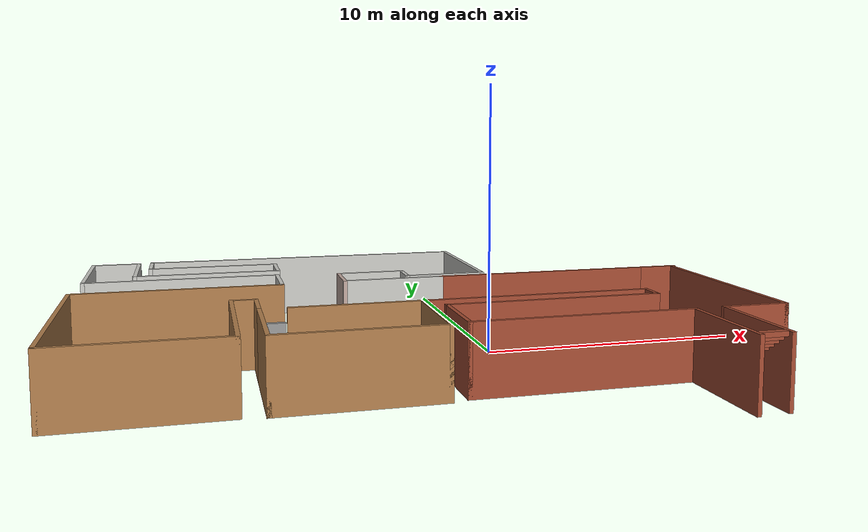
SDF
<?xml version='1.0'?>
<sdf version='1.6'>
  <model name='My_World_1'>
    <pose frame=''>-3.01264 -0.098382 0 0 -0 0</pose>
    <link name='Door_0'>
      <collision name='Door_0_Collision'>
        <geometry>
          <box>
            <size>0.9 0.17 2</size>
          </box>
        </geometry>
        <pose frame=''>0 0 1 0 -0 0</pose>
      </collision>
      <visual name='Door_0_Visual'>
        <pose frame=''>0 0 1 0 -0 0</pose>
        <geometry>
          <box>
            <size>0.9 0.17 2</size>
          </box>
        </geometry>
        <material>
          <script>
            <uri>file://media/materials/scripts/gazebo.material</uri>
            <name>Gazebo/Grey</name>
          </script>
        </material>
      </visual>
      <pose frame=''>-5.16313 -1.68606 0 0 -0 0</pose>
    </link>
    <link name='Stairs_0'>
      <visual name='Stairs_0_Visual_0'>
        <pose frame=''>9.04406 -5.22398 0.083333 0 -0 0</pose>
        <geometry>
          <box>
            <size>1 0.233333 0.166667</size>
          </box>
        </geometry>
        <material>
          <script>
            <uri>file://media/materials/scripts/gazebo.material</uri>
            <name>Gazebo/Bricks</name>
          </script>
          <ambient>1 1 1 1</ambient>
        </material>
        <meta>
          <layer>0</layer>
        </meta>
      </visual>
      <collision name='Stairs_0_Collision_0'>
        <geometry>
          <box>
            <size>1 0.233333 0.166667</size>
          </box>
        </geometry>
        <pose frame=''>9.04406 -5.22398 0.083333 0 -0 0</pose>
      </collision>
      <visual name='Stairs_0_Visual_1'>
        <pose frame=''>9.04406 -5.45732 0.25 0 -0 0</pose>
        <geometry>
          <box>
            <size>1 0.233333 0.166667</size>
          </box>
        </geometry>
        <material>
          <script>
            <uri>file://media/materials/scripts/gazebo.material</uri>
            <name>Gazebo/Bricks</name>
          </script>
          <ambient>1 1 1 1</ambient>
        </material>
        <meta>
          <layer>0</layer>
        </meta>
      </visual>
      <collision name='Stairs_0_Collision_1'>
        <geometry>
          <box>
            <size>1 0.233333 0.166667</size>
          </box>
        </geometry>
        <pose frame=''>9.04406 -5.45732 0.25 0 -0 0</pose>
      </collision>
      <visual name='Stairs_0_Visual_2'>
        <pose frame=''>9.04406 -5.69065 0.416667 0 -0 0</pose>
        <geometry>
          <box>
            <size>1 0.233333 0.166667</size>
          </box>
        </geometry>
        <material>
          <script>
            <uri>file://media/materials/scripts/gazebo.material</uri>
            <name>Gazebo/Bricks</name>
          </script>
          <ambient>1 1 1 1</ambient>
        </material>
        <meta>
          <layer>0</layer>
        </meta>
      </visual>
      <collision name='Stairs_0_Collision_2'>
        <geometry>
          <box>
            <size>1 0.233333 0.166667</size>
          </box>
        </geometry>
        <pose frame=''>9.04406 -5.69065 0.416667 0 -0 0</pose>
      </collision>
      <visual name='Stairs_0_Visual_3'>
        <pose frame=''>9.04406 -5.92398 0.583333 0 -0 0</pose>
        <geometry>
          <box>
            <size>1 0.233333 0.166667</size>
          </box>
        </geometry>
        <material>
          <script>
            <uri>file://media/materials/scripts/gazebo.material</uri>
            <name>Gazebo/Bricks</name>
          </script>
          <ambient>1 1 1 1</ambient>
        </material>
        <meta>
          <layer>0</layer>
        </meta>
      </visual>
      <collision name='Stairs_0_Collision_3'>
        <geometry>
          <box>
            <size>1 0.233333 0.166667</size>
          </box>
        </geometry>
        <pose frame=''>9.04406 -5.92398 0.583333 0 -0 0</pose>
      </collision>
      <visual name='Stairs_0_Visual_4'>
        <pose frame=''>9.04406 -6.15731 0.75 0 -0 0</pose>
        <geometry>
          <box>
            <size>1 0.233333 0.166667</size>
          </box>
        </geometry>
        <material>
          <script>
            <uri>file://media/materials/scripts/gazebo.material</uri>
            <name>Gazebo/Bricks</name>
          </script>
          <ambient>1 1 1 1</ambient>
        </material>
        <meta>
          <layer>0</layer>
        </meta>
      </visual>
      <collision name='Stairs_0_Collision_4'>
        <geometry>
          <box>
            <size>1 0.233333 0.166667</size>
          </box>
        </geometry>
        <pose frame=''>9.04406 -6.15731 0.75 0 -0 0</pose>
      </collision>
      <visual name='Stairs_0_Visual_5'>
        <pose frame=''>9.04406 -6.39065 0.916667 0 -0 0</pose>
        <geometry>
          <box>
            <size>1 0.233333 0.166667</size>
          </box>
        </geometry>
        <material>
          <script>
            <uri>file://media/materials/scripts/gazebo.material</uri>
            <name>Gazebo/Bricks</name>
          </script>
          <ambient>1 1 1 1</ambient>
        </material>
        <meta>
          <layer>0</layer>
        </meta>
      </visual>
      <collision name='Stairs_0_Collision_5'>
        <geometry>
          <box>
            <size>1 0.233333 0.166667</size>
          </box>
        </geometry>
        <pose frame=''>9.04406 -6.39065 0.916667 0 -0 0</pose>
      </collision>
      <visual name='Stairs_0_Visual_6'>
        <pose frame=''>9.04406 -6.62398 1.08333 0 -0 0</pose>
        <geometry>
          <box>
            <size>1 0.233333 0.166667</size>
          </box>
        </geometry>
        <material>
          <script>
            <uri>file://media/materials/scripts/gazebo.material</uri>
            <name>Gazebo/Bricks</name>
          </script>
          <ambient>1 1 1 1</ambient>
        </material>
        <meta>
          <layer>0</layer>
        </meta>
      </visual>
      <collision name='Stairs_0_Collision_6'>
        <geometry>
          <box>
            <size>1 0.233333 0.166667</size>
          </box>
        </geometry>
        <pose frame=''>9.04406 -6.62398 1.08333 0 -0 0</pose>
      </collision>
      <visual name='Stairs_0_Visual_7'>
        <pose frame=''>9.04406 -6.85731 1.25 0 -0 0</pose>
        <geometry>
          <box>
            <size>1 0.233333 0.166667</size>
          </box>
        </geometry>
        <material>
          <script>
            <uri>file://media/materials/scripts/gazebo.material</uri>
            <name>Gazebo/Bricks</name>
          </script>
          <ambient>1 1 1 1</ambient>
        </material>
        <meta>
          <layer>0</layer>
        </meta>
      </visual>
      <collision name='Stairs_0_Collision_7'>
        <geometry>
          <box>
            <size>1 0.233333 0.166667</size>
          </box>
        </geometry>
        <pose frame=''>9.04406 -6.85731 1.25 0 -0 0</pose>
      </collision>
      <visual name='Stairs_0_Visual_8'>
        <pose frame=''>9.04406 -7.09065 1.41667 0 -0 0</pose>
        <geometry>
          <box>
            <size>1 0.233333 0.166667</size>
          </box>
        </geometry>
        <material>
          <script>
            <uri>file://media/materials/scripts/gazebo.material</uri>
            <name>Gazebo/Bricks</name>
          </script>
          <ambient>1 1 1 1</ambient>
        </material>
        <meta>
          <layer>0</layer>
        </meta>
      </visual>
      <collision name='Stairs_0_Collision_8'>
        <geometry>
          <box>
            <size>1 0.233333 0.166667</size>
          </box>
        </geometry>
        <pose frame=''>9.04406 -7.09065 1.41667 0 -0 0</pose>
      </collision>
      <visual name='Stairs_0_Visual_9'>
        <pose frame=''>9.04406 -7.32398 1.58333 0 -0 0</pose>
        <geometry>
          <box>
            <size>1 0.233333 0.166667</size>
          </box>
        </geometry>
        <material>
          <script>
            <uri>file://media/materials/scripts/gazebo.material</uri>
            <name>Gazebo/Bricks</name>
          </script>
          <ambient>1 1 1 1</ambient>
        </material>
        <meta>
          <layer>0</layer>
        </meta>
      </visual>
      <collision name='Stairs_0_Collision_9'>
        <geometry>
          <box>
            <size>1 0.233333 0.166667</size>
          </box>
        </geometry>
        <pose frame=''>9.04406 -7.32398 1.58333 0 -0 0</pose>
      </collision>
      <visual name='Stairs_0_Visual_10'>
        <pose frame=''>9.04406 -7.55732 1.75 0 -0 0</pose>
        <geometry>
          <box>
            <size>1 0.233333 0.166667</size>
          </box>
        </geometry>
        <material>
          <script>
            <uri>file://media/materials/scripts/gazebo.material</uri>
            <name>Gazebo/Bricks</name>
          </script>
          <ambient>1 1 1 1</ambient>
        </material>
        <meta>
          <layer>0</layer>
        </meta>
      </visual>
      <collision name='Stairs_0_Collision_10'>
        <geometry>
          <box>
            <size>1 0.233333 0.166667</size>
          </box>
        </geometry>
        <pose frame=''>9.04406 -7.55732 1.75 0 -0 0</pose>
      </collision>
      <visual name='Stairs_0_Visual_11'>
        <pose frame=''>9.04406 -7.79065 1.91667 0 -0 0</pose>
        <geometry>
          <box>
            <size>1 0.233333 0.166667</size>
          </box>
        </geometry>
        <material>
          <script>
            <uri>file://media/materials/scripts/gazebo.material</uri>
            <name>Gazebo/Bricks</name>
          </script>
          <ambient>1 1 1 1</ambient>
        </material>
        <meta>
          <layer>0</layer>
        </meta>
      </visual>
      <collision name='Stairs_0_Collision_11'>
        <geometry>
          <box>
            <size>1 0.233333 0.166667</size>
          </box>
        </geometry>
        <pose frame=''>9.04406 -7.79065 1.91667 0 -0 0</pose>
      </collision>
      <visual name='Stairs_0_Visual_12'>
        <pose frame=''>9.04406 -8.02398 2.08333 0 -0 0</pose>
        <geometry>
          <box>
            <size>1 0.233333 0.166667</size>
          </box>
        </geometry>
        <material>
          <script>
            <uri>file://media/materials/scripts/gazebo.material</uri>
            <name>Gazebo/Bricks</name>
          </script>
          <ambient>1 1 1 1</ambient>
        </material>
        <meta>
          <layer>0</layer>
        </meta>
      </visual>
      <collision name='Stairs_0_Collision_12'>
        <geometry>
          <box>
            <size>1 0.233333 0.166667</size>
          </box>
        </geometry>
        <pose frame=''>9.04406 -8.02398 2.08333 0 -0 0</pose>
      </collision>
      <visual name='Stairs_0_Visual_13'>
        <pose frame=''>9.04406 -8.25732 2.25 0 -0 0</pose>
        <geometry>
          <box>
            <size>1 0.233333 0.166667</size>
          </box>
        </geometry>
        <material>
          <script>
            <uri>file://media/materials/scripts/gazebo.material</uri>
            <name>Gazebo/Bricks</name>
          </script>
          <ambient>1 1 1 1</ambient>
        </material>
        <meta>
          <layer>0</layer>
        </meta>
      </visual>
      <collision name='Stairs_0_Collision_13'>
        <geometry>
          <box>
            <size>1 0.233333 0.166667</size>
          </box>
        </geometry>
        <pose frame=''>9.04406 -8.25732 2.25 0 -0 0</pose>
      </collision>
      <visual name='Stairs_0_Visual_14'>
        <pose frame=''>9.04406 -8.49065 2.41667 0 -0 0</pose>
        <geometry>
          <box>
            <size>1 0.233333 0.166667</size>
          </box>
        </geometry>
        <material>
          <script>
            <uri>file://media/materials/scripts/gazebo.material</uri>
            <name>Gazebo/Bricks</name>
          </script>
          <ambient>1 1 1 1</ambient>
        </material>
        <meta>
          <layer>0</layer>
        </meta>
      </visual>
      <collision name='Stairs_0_Collision_14'>
        <geometry>
          <box>
            <size>1 0.233333 0.166667</size>
          </box>
        </geometry>
        <pose frame=''>9.04406 -8.49065 2.41667 0 -0 0</pose>
      </collision>
    </link>
    <link name='Wall_0'>
      <collision name='Wall_0_Collision'>
        <geometry>
          <box>
            <size>8.75 0.15 2.5</size>
          </box>
        </geometry>
        <pose frame=''>0 0 1.25 0 -0 0</pose>
      </collision>
      <visual name='Wall_0_Visual'>
        <pose frame=''>0 0 1.25 0 -0 0</pose>
        <geometry>
          <box>
            <size>8.75 0.15 2.5</size>
          </box>
        </geometry>
        <material>
          <script>
            <uri>file://media/materials/scripts/gazebo.material</uri>
            <name>Gazebo/Bricks</name>
          </script>
          <ambient>1 1 1 1</ambient>
        </material>
        <meta>
          <layer>0</layer>
        </meta>
      </visual>
      <pose frame=''>6.1383 2.63004 0 0 -0 3.14159</pose>
    </link>
    <link name='Wall_10'>
      <collision name='Wall_10_Collision'>
        <geometry>
          <box>
            <size>5.75 0.15 2.5</size>
          </box>
        </geometry>
        <pose frame=''>0 0 1.25 0 -0 0</pose>
      </collision>
      <visual name='Wall_10_Visual'>
        <pose frame=''>0 0 1.25 0 -0 0</pose>
        <geometry>
          <box>
            <size>5.75 0.15 2.5</size>
          </box>
        </geometry>
        <material>
          <script>
            <uri>file://media/materials/scripts/gazebo.material</uri>
            <name>Gazebo/CeilingTiled</name>
          </script>
          <ambient>0.996078 0.47451 0.0196078 1</ambient>
        </material>
        <meta>
          <layer>0</layer>
        </meta>
      </visual>
      <pose frame=''>3.6883 5.93004 0 0 -0 1.5708</pose>
    </link>
    <link name='Wall_11'>
      <collision name='Wall_11_Collision'>
        <geometry>
          <box>
            <size>13.25 0.15 2.5</size>
          </box>
        </geometry>
        <pose frame=''>0 0 1.25 0 -0 0</pose>
      </collision>
      <visual name='Wall_11_Visual'>
        <pose frame=''>0 0 1.25 0 -0 0</pose>
        <geometry>
          <box>
            <size>13.25 0.15 2.5</size>
          </box>
        </geometry>
        <material>
          <script>
            <uri>file://media/materials/scripts/gazebo.material</uri>
            <name>Gazebo/CeilingTiled</name>
          </script>
          <ambient>0.996078 0.47451 0.0196078 1</ambient>
        </material>
        <meta>
          <layer>0</layer>
        </meta>
      </visual>
      <pose frame=''>-2.8617 8.73004 0 0 -0 3.14159</pose>
    </link>
    <link name='Wall_12'>
      <collision name='Wall_12_Collision'>
        <geometry>
          <box>
            <size>1.71502 0.15 2.5</size>
          </box>
        </geometry>
        <pose frame=''>0 0 1.25 0 -0 0</pose>
      </collision>
      <visual name='Wall_12_Visual'>
        <pose frame=''>0 0 1.25 0 -0 0</pose>
        <geometry>
          <box>
            <size>1.71502 0.15 2.5</size>
          </box>
        </geometry>
        <material>
          <script>
            <uri>file://media/materials/scripts/gazebo.material</uri>
            <name>Gazebo/CeilingTiled</name>
          </script>
          <ambient>0.996078 0.47451 0.0196078 1</ambient>
        </material>
        <meta>
          <layer>0</layer>
        </meta>
      </visual>
      <pose frame=''>-9.4117 7.94753 0 0 -0 -1.5708</pose>
    </link>
    <link name='Wall_13'>
      <collision name='Wall_13_Collision'>
        <geometry>
          <box>
            <size>5.25 0.15 2.5</size>
          </box>
        </geometry>
        <pose frame=''>0 0 1.25 0 -0 0</pose>
      </collision>
      <visual name='Wall_13_Visual'>
        <pose frame=''>0 0 1.25 0 -0 0</pose>
        <geometry>
          <box>
            <size>5.25 0.15 2.5</size>
          </box>
        </geometry>
        <material>
          <script>
            <uri>file://media/materials/scripts/gazebo.material</uri>
            <name>Gazebo/CeilingTiled</name>
          </script>
          <ambient>0.996078 0.47451 0.0196078 1</ambient>
        </material>
        <meta>
          <layer>0</layer>
        </meta>
      </visual>
      <pose frame=''>-6.84421 7.16502 0 0 -0 0</pose>
    </link>
    <link name='Wall_14'>
      <collision name='Wall_14_Collision'>
        <geometry>
          <box>
            <size>1.78498 0.15 2.5</size>
          </box>
        </geometry>
        <pose frame=''>0 0 1.25 0 -0 0</pose>
      </collision>
      <visual name='Wall_14_Visual'>
        <pose frame=''>0 0 1.25 0 -0 0</pose>
        <geometry>
          <box>
            <size>1.78498 0.15 2.5</size>
          </box>
        </geometry>
        <material>
          <script>
            <uri>file://media/materials/scripts/gazebo.material</uri>
            <name>Gazebo/CeilingTiled</name>
          </script>
          <ambient>0.996078 0.47451 0.0196078 1</ambient>
        </material>
        <meta>
          <layer>0</layer>
        </meta>
      </visual>
      <pose frame=''>-4.3117 6.34753 0 0 -0 -1.5708</pose>
    </link>
    <link name='Wall_15'>
      <collision name='Wall_15_Collision'>
        <geometry>
          <box>
            <size>5.8032 0.15 2.5</size>
          </box>
        </geometry>
        <pose frame=''>0 0 1.25 0 -0 0</pose>
      </collision>
      <visual name='Wall_15_Visual'>
        <pose frame=''>0 0 1.25 0 -0 0</pose>
        <geometry>
          <box>
            <size>5.8032 0.15 2.5</size>
          </box>
        </geometry>
        <material>
          <script>
            <uri>file://media/materials/scripts/gazebo.material</uri>
            <name>Gazebo/CeilingTiled</name>
          </script>
          <ambient>1 1 1 1</ambient>
        </material>
        <meta>
          <layer>0</layer>
        </meta>
      </visual>
      <pose frame=''>-7.1383 5.53004 0 0 -0 3.14159</pose>
    </link>
    <link name='Wall_16'>
      <collision name='Wall_16_Collision'>
        <geometry>
          <box>
            <size>3.25 0.15 2.5</size>
          </box>
        </geometry>
        <pose frame=''>0 0 1.25 0 -0 0</pose>
      </collision>
      <visual name='Wall_16_Visual'>
        <pose frame=''>0 0 1.25 0 -0 0</pose>
        <geometry>
          <box>
            <size>3.25 0.15 2.5</size>
          </box>
        </geometry>
        <material>
          <script>
            <uri>file://media/materials/scripts/gazebo.material</uri>
            <name>Gazebo/CeilingTiled</name>
          </script>
          <ambient>1 1 1 1</ambient>
        </material>
        <meta>
          <layer>0</layer>
        </meta>
      </visual>
      <pose frame=''>-9.9383 7.08004 0 0 -0 1.5708</pose>
    </link>
    <link name='Wall_2'>
      <collision name='Wall_2_Collision'>
        <geometry>
          <box>
            <size>8.5 0.15 2.5</size>
          </box>
        </geometry>
        <pose frame=''>0 0 1.25 0 -0 0</pose>
      </collision>
      <visual name='Wall_2_Visual'>
        <pose frame=''>0 0 1.25 0 -0 0</pose>
        <geometry>
          <box>
            <size>8.5 0.15 2.5</size>
          </box>
        </geometry>
        <material>
          <script>
            <uri>file://media/materials/scripts/gazebo.material</uri>
            <name>Gazebo/Bricks</name>
          </script>
          <ambient>1 1 1 1</ambient>
        </material>
        <meta>
          <layer>0</layer>
        </meta>
      </visual>
      <pose frame=''>4.32596 -1.66689 0 0 -0 0</pose>
    </link>
    <link name='Wall_32'>
      <collision name='Wall_32_Collision'>
        <geometry>
          <box>
            <size>2 0.15 2.5</size>
          </box>
        </geometry>
        <pose frame=''>0 0 1.25 0 -0 0</pose>
      </collision>
      <visual name='Wall_32_Visual'>
        <pose frame=''>0 0 1.25 0 -0 0</pose>
        <geometry>
          <box>
            <size>2 0.15 2.5</size>
          </box>
        </geometry>
        <material>
          <script>
            <uri>file://media/materials/scripts/gazebo.material</uri>
            <name>Gazebo/CeilingTiled</name>
          </script>
          <ambient>1 1 1 1</ambient>
        </material>
        <meta>
          <layer>0</layer>
        </meta>
      </visual>
      <pose frame=''>-10.8633 8.63004 0 0 -0 3.14159</pose>
    </link>
    <link name='Wall_33'>
      <collision name='Wall_33_Collision'>
        <geometry>
          <box>
            <size>4.25 0.15 2.5</size>
          </box>
        </geometry>
        <pose frame=''>0 0 1.25 0 -0 0</pose>
      </collision>
      <visual name='Wall_33_Visual'>
        <pose frame=''>0 0 1.25 0 -0 0</pose>
        <geometry>
          <box>
            <size>4.25 0.15 2.5</size>
          </box>
        </geometry>
        <material>
          <script>
            <uri>file://media/materials/scripts/gazebo.material</uri>
            <name>Gazebo/CeilingTiled</name>
          </script>
          <ambient>1 1 1 1</ambient>
        </material>
        <meta>
          <layer>0</layer>
        </meta>
      </visual>
      <pose frame=''>-11.7883 6.58004 0 0 -0 -1.5708</pose>
    </link>
    <link name='Wall_34'>
      <collision name='Wall_34_Collision'>
        <geometry>
          <box>
            <size>7.5 0.15 2.5</size>
          </box>
        </geometry>
        <pose frame=''>0 0 1.25 0 -0 0</pose>
      </collision>
      <visual name='Wall_34_Visual'>
        <pose frame=''>0 0 1.25 0 -0 0</pose>
        <geometry>
          <box>
            <size>7.5 0.15 2.5</size>
          </box>
        </geometry>
        <material>
          <script>
            <uri>file://media/materials/scripts/gazebo.material</uri>
            <name>Gazebo/CeilingTiled</name>
          </script>
          <ambient>1 1 1 1</ambient>
        </material>
        <meta>
          <layer>0</layer>
        </meta>
      </visual>
      <pose frame=''>-8.1133 4.53004 0 0 -0 0</pose>
    </link>
    <link name='Wall_35'>
      <collision name='Wall_35_Collision'>
        <geometry>
          <box>
            <size>2.25 0.15 2.5</size>
          </box>
        </geometry>
        <pose frame=''>0 0 1.25 0 -0 0</pose>
      </collision>
      <visual name='Wall_35_Visual'>
        <pose frame=''>0 0 1.25 0 -0 0</pose>
        <geometry>
          <box>
            <size>2.25 0.15 2.5</size>
          </box>
        </geometry>
        <material>
          <script>
            <uri>file://media/materials/scripts/gazebo.material</uri>
            <name>Gazebo/CeilingTiled</name>
          </script>
          <ambient>1 1 1 1</ambient>
        </material>
        <meta>
          <layer>0</layer>
        </meta>
      </visual>
      <pose frame=''>-4.4383 3.48004 0 0 -0 -1.5708</pose>
    </link>
    <link name='Wall_36'>
      <collision name='Wall_36_Collision'>
        <geometry>
          <box>
            <size>7.75 0.15 2.5</size>
          </box>
        </geometry>
        <pose frame=''>0 0 1.25 0 -0 0</pose>
      </collision>
      <visual name='Wall_36_Visual'>
        <pose frame=''>0 0 1.25 0 -0 0</pose>
        <geometry>
          <box>
            <size>7.75 0.15 2.5</size>
          </box>
        </geometry>
        <material>
          <script>
            <uri>file://media/materials/scripts/gazebo.material</uri>
            <name>Gazebo/Wood</name>
          </script>
          <ambient>1 1 1 1</ambient>
        </material>
        <meta>
          <layer>0</layer>
        </meta>
      </visual>
      <pose frame=''>-8.2383 2.43004 0 0 -0 3.14159</pose>
    </link>
    <link name='Wall_37'>
      <collision name='Wall_37_Collision'>
        <geometry>
          <box>
            <size>7.75 0.15 2.5</size>
          </box>
        </geometry>
        <pose frame=''>0 0 1.25 0 -0 0</pose>
      </collision>
      <visual name='Wall_37_Visual'>
        <pose frame=''>0 0 1.25 0 -0 0</pose>
        <geometry>
          <box>
            <size>7.75 0.15 2.5</size>
          </box>
        </geometry>
        <material>
          <script>
            <uri>file://media/materials/scripts/gazebo.material</uri>
            <name>Gazebo/Wood</name>
          </script>
          <ambient>1 1 1 1</ambient>
        </material>
        <meta>
          <layer>0</layer>
        </meta>
      </visual>
      <pose frame=''>-12.0383 -1.36996 0 0 -0 -1.5708</pose>
    </link>
    <link name='Wall_38'>
      <collision name='Wall_38_Collision'>
        <geometry>
          <box>
            <size>5.75 0.15 2.5</size>
          </box>
        </geometry>
        <pose frame=''>0 0 1.25 0 -0 0</pose>
      </collision>
      <visual name='Wall_38_Visual'>
        <pose frame=''>0 0 1.25 0 -0 0</pose>
        <geometry>
          <box>
            <size>5.75 0.15 2.5</size>
          </box>
        </geometry>
        <material>
          <script>
            <uri>file://media/materials/scripts/gazebo.material</uri>
            <name>Gazebo/Wood</name>
          </script>
          <ambient>1 1 1 1</ambient>
        </material>
        <meta>
          <layer>0</layer>
        </meta>
      </visual>
      <pose frame=''>-9.2383 -5.16996 0 0 -0 0</pose>
    </link>
    <link name='Wall_39'>
      <collision name='Wall_39_Collision'>
        <geometry>
          <box>
            <size>5.25 0.15 2.5</size>
          </box>
        </geometry>
        <pose frame=''>0 0 1.25 0 -0 0</pose>
      </collision>
      <visual name='Wall_39_Visual'>
        <pose frame=''>0 0 1.25 0 -0 0</pose>
        <geometry>
          <box>
            <size>5.25 0.15 2.5</size>
          </box>
        </geometry>
        <material>
          <script>
            <uri>file://media/materials/scripts/gazebo.material</uri>
            <name>Gazebo/Wood</name>
          </script>
          <ambient>1 1 1 1</ambient>
        </material>
        <meta>
          <layer>0</layer>
        </meta>
      </visual>
      <pose frame=''>-6.4383 -2.61996 0 0 -0 1.5708</pose>
    </link>
    <link name='Wall_40'>
      <collision name='Wall_40_Collision'>
        <geometry>
          <box>
            <size>1 0.15 2.5</size>
          </box>
        </geometry>
        <pose frame=''>0 0 1.25 0 -0 0</pose>
      </collision>
      <visual name='Wall_40_Visual'>
        <pose frame=''>0 0 1.25 0 -0 0</pose>
        <geometry>
          <box>
            <size>1 0.15 2.5</size>
          </box>
        </geometry>
        <material>
          <script>
            <uri>file://media/materials/scripts/gazebo.material</uri>
            <name>Gazebo/Wood</name>
          </script>
          <ambient>1 1 1 1</ambient>
        </material>
        <meta>
          <layer>0</layer>
        </meta>
      </visual>
      <pose frame=''>-6.0133 -0.069956 0 0 -0 0</pose>
    </link>
    <link name='Wall_41'>
      <collision name='Wall_41_Collision'>
        <geometry>
          <box>
            <size>1.75 0.15 2.5</size>
          </box>
        </geometry>
        <pose frame=''>0 0 1.25 0 -0 0</pose>
      </collision>
      <visual name='Wall_41_Visual'>
        <pose frame=''>0 0 1.25 0 -0 0</pose>
        <geometry>
          <box>
            <size>1.75 0.15 2.5</size>
          </box>
        </geometry>
        <material>
          <script>
            <uri>file://media/materials/scripts/gazebo.material</uri>
            <name>Gazebo/Wood</name>
          </script>
          <ambient>1 1 1 1</ambient>
        </material>
        <meta>
          <layer>0</layer>
        </meta>
      </visual>
      <pose frame=''>-5.5883 -0.869956 0 0 -0 -1.5708</pose>
    </link>
    <link name='Wall_43'>
      <collision name='Wall_43_Collision'>
        <geometry>
          <box>
            <size>3.75 0.15 2.5</size>
          </box>
        </geometry>
        <pose frame=''>0 0 1.25 0 -0 0</pose>
      </collision>
      <visual name='Wall_43_Visual'>
        <pose frame=''>0 0 1.25 0 -0 0</pose>
        <geometry>
          <box>
            <size>3.75 0.15 2.5</size>
          </box>
        </geometry>
        <material>
          <script>
            <uri>file://media/materials/scripts/gazebo.material</uri>
            <name>Gazebo/Wood</name>
          </script>
          <ambient>1 1 1 1</ambient>
        </material>
        <meta>
          <layer>0</layer>
        </meta>
      </visual>
      <pose frame=''>-5.5883 -3.46996 0 0 -0 -1.5708</pose>
    </link>
    <link name='Wall_44'>
      <collision name='Wall_44_Collision'>
        <geometry>
          <box>
            <size>5.75 0.15 2.5</size>
          </box>
        </geometry>
        <pose frame=''>0 0 1.25 0 -0 0</pose>
      </collision>
      <visual name='Wall_44_Visual'>
        <pose frame=''>0 0 1.25 0 -0 0</pose>
        <geometry>
          <box>
            <size>5.75 0.15 2.5</size>
          </box>
        </geometry>
        <material>
          <script>
            <uri>file://media/materials/scripts/gazebo.material</uri>
            <name>Gazebo/Wood</name>
          </script>
          <ambient>1 1 1 1</ambient>
        </material>
        <meta>
          <layer>0</layer>
        </meta>
      </visual>
      <pose frame=''>-2.7883 -5.26996 0 0 -0 0</pose>
    </link>
    <link name='Wall_45'>
      <collision name='Wall_45_Collision'>
        <geometry>
          <box>
            <size>3.75 0.15 2.5</size>
          </box>
        </geometry>
        <pose frame=''>0 0 1.25 0 -0 0</pose>
      </collision>
      <visual name='Wall_45_Visual'>
        <pose frame=''>0 0 1.25 0 -0 0</pose>
        <geometry>
          <box>
            <size>3.75 0.15 2.5</size>
          </box>
        </geometry>
        <material>
          <script>
            <uri>file://media/materials/scripts/gazebo.material</uri>
            <name>Gazebo/Wood</name>
          </script>
          <ambient>1 1 1 1</ambient>
        </material>
        <meta>
          <layer>0</layer>
        </meta>
      </visual>
      <pose frame=''>0.0117 -3.46996 0 0 -0 1.5708</pose>
    </link>
    <link name='Wall_46'>
      <collision name='Wall_46_Collision'>
        <geometry>
          <box>
            <size>4.75 0.15 2.5</size>
          </box>
        </geometry>
        <pose frame=''>0 0 1.25 0 -0 0</pose>
      </collision>
      <visual name='Wall_46_Visual'>
        <pose frame=''>0 0 1.25 0 -0 0</pose>
        <geometry>
          <box>
            <size>4.75 0.15 2.5</size>
          </box>
        </geometry>
        <material>
          <script>
            <uri>file://media/materials/scripts/gazebo.material</uri>
            <name>Gazebo/Wood</name>
          </script>
          <ambient>0.760784 0.662745 0.627451 1</ambient>
        </material>
        <meta>
          <layer>0</layer>
        </meta>
      </visual>
      <pose frame=''>-2.2883 -1.66996 0 0 -0 3.14159</pose>
    </link>
    <link name='Wall_49'>
      <collision name='Wall_49_Collision'>
        <geometry>
          <box>
            <size>1 0.15 2.5</size>
          </box>
        </geometry>
        <pose frame=''>0 0 1.25 0 -0 0</pose>
      </collision>
      <visual name='Wall_49_Visual'>
        <pose frame=''>0 0 1.25 0 -0 0</pose>
        <geometry>
          <box>
            <size>1 0.15 2.5</size>
          </box>
        </geometry>
        <material>
          <script>
            <uri>file://media/materials/scripts/gazebo.material</uri>
            <name>Gazebo/Bricks</name>
          </script>
          <ambient>1 1 1 1</ambient>
        </material>
        <meta>
          <layer>0</layer>
        </meta>
      </visual>
      <pose frame=''>8.50096 -2.09189 0 0 -0 -1.5708</pose>
    </link>
    <link name='Wall_5'>
      <collision name='Wall_5_Collision'>
        <geometry>
          <box>
            <size>4 0.15 2.5</size>
          </box>
        </geometry>
        <pose frame=''>0 0 1.25 0 -0 0</pose>
      </collision>
      <visual name='Wall_5_Visual'>
        <pose frame=''>0 0 1.25 0 -0 0</pose>
        <geometry>
          <box>
            <size>4 0.15 2.5</size>
          </box>
        </geometry>
        <material>
          <script>
            <uri>file://media/materials/scripts/gazebo.material</uri>
            <name>Gazebo/CeilingTiled</name>
          </script>
          <ambient>0.760784 0.662745 0.627451 1</ambient>
        </material>
        <meta>
          <layer>0</layer>
        </meta>
      </visual>
      <pose frame=''>-0.0867 2.63004 0 0 -0 3.14159</pose>
    </link>
    <link name='Wall_50'>
      <collision name='Wall_50_Collision'>
        <geometry>
          <box>
            <size>8 0.15 2.5</size>
          </box>
        </geometry>
        <pose frame=''>0 0 1.25 0 -0 0</pose>
      </collision>
      <visual name='Wall_50_Visual'>
        <pose frame=''>0 0 1.25 0 -0 0</pose>
        <geometry>
          <box>
            <size>8 0.15 2.5</size>
          </box>
        </geometry>
        <material>
          <script>
            <uri>file://media/materials/scripts/gazebo.material</uri>
            <name>Gazebo/Bricks</name>
          </script>
          <ambient>1 1 1 1</ambient>
        </material>
        <meta>
          <layer>0</layer>
        </meta>
      </visual>
      <pose frame=''>4.57596 -2.51689 0 0 -0 3.14159</pose>
    </link>
    <link name='Wall_51'>
      <collision name='Wall_51_Collision'>
        <geometry>
          <box>
            <size>2.75 0.15 2.5</size>
          </box>
        </geometry>
        <pose frame=''>0 0 1.25 0 -0 0</pose>
      </collision>
      <visual name='Wall_51_Visual'>
        <pose frame=''>0 0 1.25 0 -0 0</pose>
        <geometry>
          <box>
            <size>2.75 0.15 2.5</size>
          </box>
        </geometry>
        <material>
          <script>
            <uri>file://media/materials/scripts/gazebo.material</uri>
            <name>Gazebo/Bricks</name>
          </script>
          <ambient>1 1 1 1</ambient>
        </material>
        <meta>
          <layer>0</layer>
        </meta>
      </visual>
      <pose frame=''>0.650959 -3.81689 0 0 -0 -1.5708</pose>
    </link>
    <link name='Wall_52'>
      <collision name='Wall_52_Collision'>
        <geometry>
          <box>
            <size>7.98685 0.15 2.5</size>
          </box>
        </geometry>
        <pose frame=''>0 0 1.25 0 -0 0</pose>
      </collision>
      <visual name='Wall_52_Visual'>
        <pose frame=''>0 0 1.25 0 -0 0</pose>
        <geometry>
          <box>
            <size>7.98685 0.15 2.5</size>
          </box>
        </geometry>
        <material>
          <script>
            <uri>file://media/materials/scripts/gazebo.material</uri>
            <name>Gazebo/Bricks</name>
          </script>
          <ambient>1 1 1 1</ambient>
        </material>
        <meta>
          <layer>0</layer>
        </meta>
      </visual>
      <pose frame=''>4.56938 -5.11689 0 0 -0 0</pose>
    </link>
    <link name='Wall_54'>
      <collision name='Wall_54_Collision'>
        <geometry>
          <box>
            <size>2.5 0.15 2.5</size>
          </box>
        </geometry>
        <pose frame=''>0 0 1.25 0 -0 0</pose>
      </collision>
      <visual name='Wall_54_Visual'>
        <pose frame=''>0 0 1.25 0 -0 0</pose>
        <geometry>
          <box>
            <size>2.5 0.15 2.5</size>
          </box>
        </geometry>
        <material>
          <script>
            <uri>file://media/materials/scripts/gazebo.material</uri>
            <name>Gazebo/Bricks</name>
          </script>
          <ambient>1 1 1 1</ambient>
        </material>
        <meta>
          <layer>0</layer>
        </meta>
      </visual>
      <pose frame=''>10.7745 -5.08516 0 0 -0 0</pose>
    </link>
    <link name='Wall_55'>
      <collision name='Wall_55_Collision'>
        <geometry>
          <box>
            <size>7.73 0.15 2.5</size>
          </box>
        </geometry>
        <pose frame=''>0 0 1.25 0 -0 0</pose>
      </collision>
      <visual name='Wall_55_Visual'>
        <pose frame=''>0 0 1.25 0 -0 0</pose>
        <geometry>
          <box>
            <size>7.73 0.15 2.5</size>
          </box>
        </geometry>
        <material>
          <script>
            <uri>file://media/materials/scripts/gazebo.material</uri>
            <name>Gazebo/Bricks</name>
          </script>
          <ambient>1 1 1 1</ambient>
        </material>
        <meta>
          <layer>0</layer>
        </meta>
      </visual>
      <pose frame=''>11.9495 -1.29516 0 0 -0 1.5708</pose>
    </link>
    <link name='Wall_58'>
      <collision name='Wall_58_Collision'>
        <geometry>
          <box>
            <size>1.75 0.15 2.5</size>
          </box>
        </geometry>
        <pose frame=''>0 0 1.25 0 -0 0</pose>
      </collision>
      <visual name='Wall_58_Visual'>
        <pose frame=''>0 0 1.25 0 -0 0</pose>
        <geometry>
          <box>
            <size>1.75 0.15 2.5</size>
          </box>
        </geometry>
        <material>
          <script>
            <uri>file://media/materials/scripts/gazebo.material</uri>
            <name>Gazebo/Bricks</name>
          </script>
          <ambient>1 1 1 1</ambient>
        </material>
        <meta>
          <layer>0</layer>
        </meta>
      </visual>
      <pose frame=''>11.2383 2.63004 0 0 -0 0</pose>
    </link>
    <link name='Wall_6'>
      <collision name='Wall_6_Collision'>
        <geometry>
          <box>
            <size>1.75 0.15 2.5</size>
          </box>
        </geometry>
        <pose frame=''>0 0 1.25 0 -0 0</pose>
      </collision>
      <visual name='Wall_6_Visual'>
        <pose frame=''>0 0 1.25 0 -0 0</pose>
        <geometry>
          <box>
            <size>1.75 0.15 2.5</size>
          </box>
        </geometry>
        <material>
          <script>
            <uri>file://media/materials/scripts/gazebo.material</uri>
            <name>Gazebo/Grey</name>
          </script>
          <ambient>0.760784 0.662745 0.627451 1</ambient>
        </material>
        <meta>
          <layer>0</layer>
        </meta>
      </visual>
      <pose frame=''>-2.0117 3.43004 0 0 -0 1.5708</pose>
    </link>
    <link name='Wall_61'>
      <collision name='Wall_61_Collision'>
        <geometry>
          <box>
            <size>3.75 0.15 2.5</size>
          </box>
        </geometry>
        <pose frame=''>0 0 1.25 0 -0 0</pose>
      </collision>
      <visual name='Wall_61_Visual'>
        <pose frame=''>0 0 1.25 0 -0 0</pose>
        <geometry>
          <box>
            <size>3.75 0.15 2.5</size>
          </box>
        </geometry>
        <material>
          <script>
            <uri>file://media/materials/scripts/gazebo.material</uri>
            <name>Gazebo/Bricks</name>
          </script>
          <ambient>1 1 1 1</ambient>
        </material>
        <meta>
          <layer>0</layer>
        </meta>
      </visual>
      <pose frame=''>8.48781 -6.93004 0 0 -0 -1.5708</pose>
    </link>
    <link name='Wall_63'>
      <collision name='Wall_63_Collision'>
        <geometry>
          <box>
            <size>3.75 0.15 2.5</size>
          </box>
        </geometry>
        <pose frame=''>0 0 1.25 0 -0 0</pose>
      </collision>
      <visual name='Wall_63_Visual'>
        <pose frame=''>0 0 1.25 0 -0 0</pose>
        <geometry>
          <box>
            <size>3.75 0.15 2.5</size>
          </box>
        </geometry>
        <material>
          <script>
            <uri>file://media/materials/scripts/gazebo.material</uri>
            <name>Gazebo/Bricks</name>
          </script>
          <ambient>1 1 1 1</ambient>
        </material>
        <meta>
          <layer>0</layer>
        </meta>
      </visual>
      <pose frame=''>9.59951 -6.88516 0 0 -0 -1.5708</pose>
    </link>
    <link name='Wall_7'>
      <collision name='Wall_7_Collision'>
        <geometry>
          <box>
            <size>2.75 0.15 2.5</size>
          </box>
        </geometry>
        <pose frame=''>0 0 1.25 0 -0 0</pose>
      </collision>
      <visual name='Wall_7_Visual'>
        <pose frame=''>0 0 1.25 0 -0 0</pose>
        <geometry>
          <box>
            <size>2.75 0.15 2.5</size>
          </box>
        </geometry>
        <material>
          <script>
            <uri>file://media/materials/scripts/gazebo.material</uri>
            <name>Gazebo/CeilingTiled</name>
          </script>
          <ambient>0.996078 0.47451 0.0196078 1</ambient>
        </material>
        <meta>
          <layer>0</layer>
        </meta>
      </visual>
      <pose frame=''>-0.7117 4.23004 0 0 -0 0</pose>
    </link>
    <link name='Wall_8'>
      <collision name='Wall_8_Collision'>
        <geometry>
          <box>
            <size>1.25 0.15 2.5</size>
          </box>
        </geometry>
        <pose frame=''>0 0 1.25 0 -0 0</pose>
      </collision>
      <visual name='Wall_8_Visual'>
        <pose frame=''>0 0 1.25 0 -0 0</pose>
        <geometry>
          <box>
            <size>1.25 0.15 2.5</size>
          </box>
        </geometry>
        <material>
          <script>
            <uri>file://media/materials/scripts/gazebo.material</uri>
            <name>Gazebo/CeilingTiled</name>
          </script>
          <ambient>0.996078 0.47451 0.0196078 1</ambient>
        </material>
        <meta>
          <layer>0</layer>
        </meta>
      </visual>
      <pose frame=''>0.5883 3.68004 0 0 -0 -1.5708</pose>
    </link>
    <link name='Wall_9'>
      <collision name='Wall_9_Collision'>
        <geometry>
          <box>
            <size>3.25 0.15 2.5</size>
          </box>
        </geometry>
        <pose frame=''>0 0 1.25 0 -0 0</pose>
      </collision>
      <visual name='Wall_9_Visual'>
        <pose frame=''>0 0 1.25 0 -0 0</pose>
        <geometry>
          <box>
            <size>3.25 0.15 2.5</size>
          </box>
        </geometry>
        <material>
          <script>
            <uri>file://media/materials/scripts/gazebo.material</uri>
            <name>Gazebo/CeilingTiled</name>
          </script>
          <ambient>0.996078 0.47451 0.0196078 1</ambient>
        </material>
        <meta>
          <layer>0</layer>
        </meta>
      </visual>
      <pose frame=''>2.1383 3.13004 0 0 -0 0</pose>
    </link>
    <static>1</static>
  </model>
</sdf>
